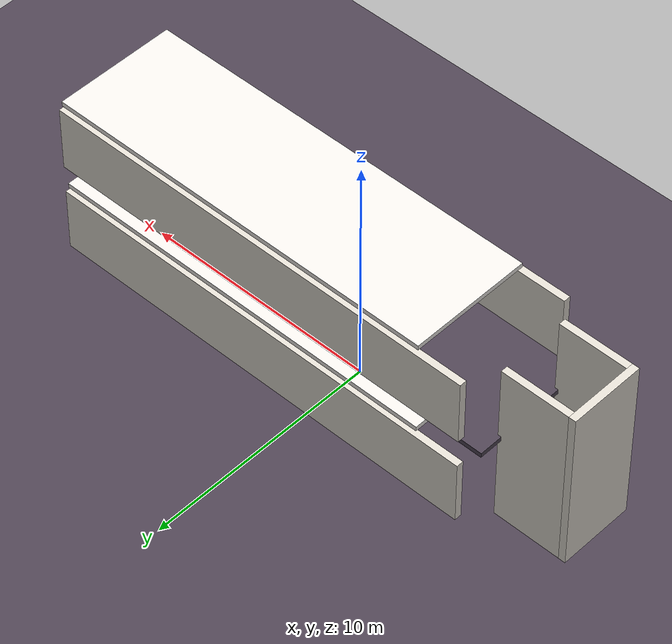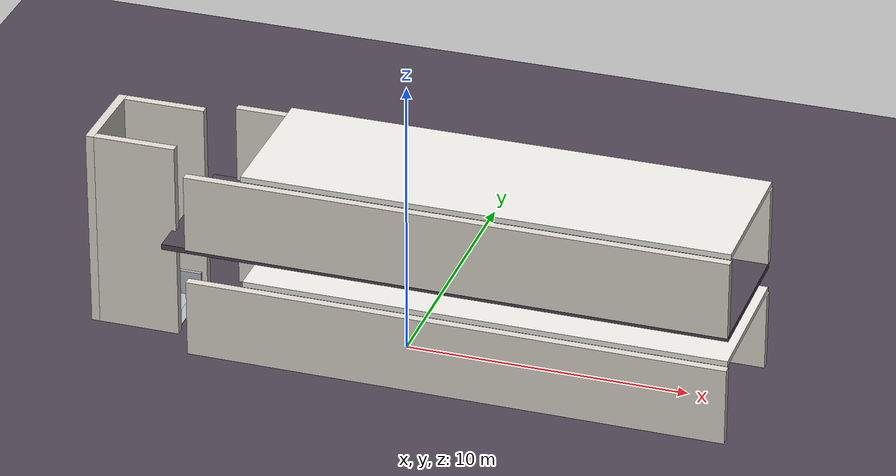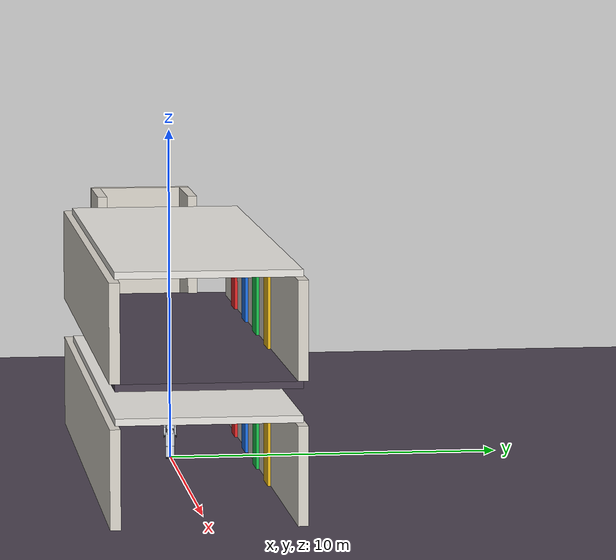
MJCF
<mujoco model="hotel">
  <include file="pyunto_h1.xml"/>

  <compiler angle="radian" autolimits="true"/>
  <option timestep="0.004" integrator="implicitfast"/>

  <visual>
    <headlight ambient="0.45 0.45 0.46" diffuse="0.40 0.40 0.40" specular="0.06 0.06 0.06"/>
    <map znear="0.02" zfar="60"/>
    <quality shadowsize="4096"/>
    <!-- Big enough for an offscreen render: the default 640x480 framebuffer refuses any
         larger image, which blocks documentation shots and any test that wants to look. -->
    <global offwidth="1600" offheight="1200"/>
  </visual>

  <asset>
    <texture name="carpet_tex" type="2d" builtin="checker" rgb1="0.32 0.28 0.34"
             rgb2="0.29 0.25 0.31" width="256" height="256"/>
    <material name="carpet" texture="carpet_tex" texrepeat="16 4" specular="0.04"/>
    <material name="wall" rgba="0.88 0.86 0.82 1" specular="0.06"/>
    <material name="ceiling" rgba="0.94 0.93 0.91 1" specular="0.05"/>
    <material name="trim" rgba="0.55 0.45 0.36 1" specular="0.15"/>
    <material name="lift_car" rgba="0.72 0.74 0.78 1" specular="0.55" shininess="0.6"/>

    <material name="door_101" rgba="0.90 0.16 0.16 1" emission="0.45" specular="0.2"/>
    <material name="door_102" rgba="0.12 0.45 0.92 1" emission="0.45" specular="0.2"/>
    <material name="door_103" rgba="0.10 0.78 0.30 1" emission="0.45" specular="0.2"/>
    <material name="door_104" rgba="0.95 0.75 0.10 1" emission="0.45" specular="0.2"/>
    <material name="lift_mat" rgba="0.85 0.20 0.75 1" emission="0.45" specular="0.3"/>
  </asset>

  <worldbody>
    <light name="corridor_light" pos="0 0 7.5" dir="0 0 -1" directional="true"
           diffuse="0.70 0.69 0.66" specular="0.10 0.10 0.10" castshadow="true"/>
    <light name="fill" pos="6 -6 5" dir="-0.4 0.6 -0.6" directional="true"
           diffuse="0.22 0.22 0.24"/>

    <!-- ================== ground floor ================== -->
    <geom name="floor_1" type="plane" size="30 30 0.05" material="carpet"
          friction="1.0 0.02 0.001" condim="3"/>
    <geom name="wall_1_north" type="box" pos="2.5 2.6 1.4" size="9.5 0.15 1.4" material="wall"/>
    <geom name="wall_1_south" type="box" pos="2.5 -2.6 1.4" size="9.5 0.15 1.4" material="wall"/>
    <geom name="ceiling_1" type="box" pos="3.5 0 3.0" size="8.5 2.6 0.1" material="ceiling"/>

    <geom name="door_101" type="box" pos="-4 2.42 1.05" size="0.5 0.06 1.05" material="door_101"/>
    <geom name="door_102" type="box" pos="-1 2.42 1.05" size="0.5 0.06 1.05" material="door_102"/>
    <geom name="door_103" type="box" pos="2 2.42 1.05" size="0.5 0.06 1.05" material="door_103"/>
    <geom name="door_104" type="box" pos="5 2.42 1.05" size="0.5 0.06 1.05" material="door_104"/>

    <!-- ================== first floor ================== -->
    <geom name="floor_2" type="box" pos="2.05 0 3.95" size="9.95 2.6 0.1" material="carpet"
          friction="1.0 0.02 0.001" condim="3"/>
    <geom name="wall_2_north" type="box" pos="2.5 2.6 5.45" size="9.5 0.15 1.4" material="wall"/>
    <geom name="wall_2_south" type="box" pos="2.5 -2.6 5.45" size="9.5 0.15 1.4" material="wall"/>
    <geom name="ceiling_2" type="box" pos="3.5 0 7.05" size="8.5 2.6 0.1" material="ceiling"/>

    <geom name="door_201" type="box" pos="-4 2.42 5.10" size="0.5 0.06 1.05" material="door_101"/>
    <geom name="door_202" type="box" pos="-1 2.42 5.10" size="0.5 0.06 1.05" material="door_102"/>
    <geom name="door_203" type="box" pos="2 2.42 5.10" size="0.5 0.06 1.05" material="door_103"/>
    <geom name="door_204" type="box" pos="5 2.42 5.10" size="0.5 0.06 1.05" material="door_104"/>

    <!-- ================== the lift ================== -->
    <!--
      The shaft walls, so the car is visibly a lift rather than a floating slab. Open on the
      east side, which is where the robot walks in from.
    -->
    <geom name="shaft_west" type="box" pos="-10.8 0 3.6" size="0.15 1.6 3.6" material="wall"/>
    <geom name="shaft_north" type="box" pos="-9.2 1.45 3.6" size="1.45 0.15 3.6" material="wall"/>
    <geom name="shaft_south" type="box" pos="-9.2 -1.45 3.6" size="1.45 0.15 3.6" material="wall"/>

    <body name="lift" pos="-9.2 0 -0.25">
      <joint name="lift_z" type="slide" axis="0 0 1" range="0 4.05" damping="60"/>
      <geom name="lift_sill" type="box" pos="1.15 0 0.255" size="0.18 1.15 0.01"
            material="lift_car" density="120" friction="1.2 0.02 0.001" condim="3"/>
      <geom name="lift_floor" type="box" size="1.30 1.20 0.25" material="lift_car"
            density="120" friction="1.2 0.02 0.001" condim="3"/>
      <!-- A marker panel on the car's back wall: the landmark the robot navigates to. -->
      <geom name="lift_panel" density="120" type="box" pos="-1.23 0 1.25" size="0.06 0.9 0.9" material="lift_mat"/>
      <geom name="lift_rail_n" density="120" type="box" pos="0 1.13 0.70" size="1.30 0.06 0.45" material="lift_car"/>
      <geom name="lift_rail_s" density="120" type="box" pos="0 -1.13 0.70" size="1.30 0.06 0.45" material="lift_car"/>
    </body>
  </worldbody>

  <actuator>
    <!--
      Position control with a stiff gain: a lift holds its floor against whatever stands on it.
      forcerange is generous because the car has to lift a 40 kg robot as well as itself.
    -->
    <position name="lift_z" joint="lift_z" kp="120000" ctrlrange="0 4.05"
              forcerange="-20000 20000"/>
  </actuator>

  <keyframe>
    <key name="corridor"
         qpos="0 0 0.8136  0 0 0 1
               0
               -0.25 -0.12 0 -0.35   0 0
               -0.25  0.12 0 -0.35   0 0
               0 0 -0.25 0.5 -0.25 0
               0 0 -0.25 0.5 -0.25 0
               0"/>
    <!-- "in_lift" starts the robot already standing in the car, for testing the ride alone. -->
    <key name="in_lift"
         qpos="-9.2 0 0.8436  0 0 0 1
               0
               -0.25 -0.12 0 -0.35   0 0
               -0.25  0.12 0 -0.35   0 0
               0 0 -0.25 0.5 -0.25 0
               0 0 -0.25 0.5 -0.25 0
               0"/>
  </keyframe>
</mujoco>

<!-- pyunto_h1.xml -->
<mujoco model="pyunto_h1">
  <compiler angle="radian" autolimits="true"/>

  <default>
    <!-- Servo defaults. kp is per-joint-group; heavier joints get more authority below. -->
    <default class="robot">
      <geom type="capsule" condim="3" friction="0.9 0.05 0.01" density="900"
            rgba="0.85 0.87 0.9 1" group="1"/>
      <joint type="hinge" damping="2" armature="0.02" limited="true"/>
      <position kp="120" dampratio="1" ctrllimited="true"/>

      <default class="leg">
        <joint damping="5" armature="0.05"/>
        <position kp="400" forcerange="-200 200"/>
      </default>
      <default class="arm">
        <joint damping="2" armature="0.02"/>
        <position kp="150" forcerange="-60 60"/>
      </default>
      <default class="finger">
        <joint damping="0.3" armature="0.005"/>
        <geom rgba="0.25 0.27 0.3 1" friction="2.0 0.1 0.01" condim="4"/>
        <position kp="30" forcerange="-25 25"/>
      </default>
      <!-- Feet: high friction, box-ish contact so the robot does not skate. -->
      <default class="foot">
        <geom type="box" friction="1.5 0.1 0.01" condim="6" rgba="0.2 0.22 0.25 1"/>
      </default>
      <default class="accent">
        <geom rgba="0.15 0.55 0.85 1"/>
      </default>
    </default>
  </default>

  <asset>
    <material name="body_mat" rgba="0.85 0.87 0.90 1" specular="0.3" shininess="0.4"/>
    <material name="dark_mat" rgba="0.20 0.22 0.25 1" specular="0.2"/>
    <material name="accent_mat" rgba="0.15 0.55 0.85 1" specular="0.5" shininess="0.6"/>
  </asset>

  <worldbody>
    <body name="pelvis" pos="0 0 0.789" childclass="robot">
      <freejoint name="root"/>
      <inertial pos="0 0 0" mass="6.0" diaginertia="0.06 0.05 0.04"/>
      <geom name="pelvis_g" type="box" size="0.085 0.10 0.06" material="body_mat"/>

      <!-- ================= TORSO ================= -->
      <body name="torso" pos="0 0 0.105">
        <joint name="waist_yaw" axis="0 0 1" range="-1.0 1.0"/>
        <inertial pos="0 0 0.16" mass="11.0" diaginertia="0.18 0.15 0.09"/>
        <geom name="torso_g" type="box" size="0.100 0.120 0.175" pos="0 0 0.165"
              material="body_mat"/>
        <geom name="chest_g" type="box" size="0.055 0.075 0.02" pos="0.055 0 0.22"
              material="accent_mat" class="accent"/>

        <!-- ================= HEAD + CAMERA ================= -->
        <!-- A short neck stub separates the head from the torso so they do not interpenetrate. -->
        <body name="head" pos="0 0 0.455">
          <inertial pos="0 0 0.03" mass="1.2" diaginertia="0.006 0.006 0.005"/>
          <joint name="neck_yaw" type="hinge" axis="0 0 1" pos="0 0 -0.055"
                 range="-1.75 1.75" damping="1.5" stiffness="0" armature="0.005"/>
          <geom name="neck_g" type="cylinder" size="0.032 0.030" pos="0 0 -0.055"
                material="dark_mat"/>
          <geom name="head_g" type="box" size="0.062 0.070 0.062" material="body_mat"/>
          <geom name="visor_g" type="box" size="0.018 0.062 0.026" pos="0.055 0 0.008"
                material="dark_mat"/>
          <camera name="head_cam" pos="0.075 0 0.01" xyaxes="0 -1 0 0 0 1" fovy="75"/>
          <site name="head_cam_site" pos="0.075 0 0.01" size="0.008" rgba="1 0 0 0.6"/>
          <camera name="look_left" pos="0.04 0.05 0.01" xyaxes="0.866 -0.5 0 0 0 1" fovy="90"/>
          <camera name="look_right" pos="0.04 -0.05 0.01" xyaxes="-0.866 -0.5 0 0 0 1" fovy="90"/>
        </body>

        <!-- ================= ARMS ================= -->
        <body name="shoulder_r" pos="0 -0.160 0.345">
          <joint name="sh_pitch_r" axis="0 1 0" range="-3.1 1.6" class="arm"/>
          <joint name="sh_roll_r" axis="1 0 0" range="-1.7 0.35" class="arm"/>
          <joint name="sh_yaw_r" axis="0 0 1" range="-1.6 1.6" class="arm"/>
          <inertial pos="0 0 -0.14" mass="1.6" diaginertia="0.012 0.012 0.004"/>
          <geom name="uarm_r" type="capsule" fromto="0 0 0 0 0 -0.285" size="0.038"
                material="body_mat"/>

          <body name="forearm_r" pos="0 0 -0.285">
            <joint name="elbow_r" axis="0 1 0" range="-2.4 0.0" class="arm"/>
            <inertial pos="0 0 -0.12" mass="1.0" diaginertia="0.006 0.006 0.002"/>
            <geom name="farm_r" type="capsule" fromto="0 0 0 0 0 -0.255" size="0.032"
                  material="body_mat"/>

            <!-- Palm + 2 fingers. Fingers are coupled by a tendon and driven by one actuator. -->
            <body name="palm_r" pos="0 0 -0.255">
              <inertial pos="0 0 -0.02" mass="0.25" diaginertia="0.0004 0.0004 0.0003"/>
              <geom name="palm_r_g" type="box" size="0.022 0.038 0.022" material="dark_mat"/>
              <site name="grip_r" pos="0 0 -0.062" size="0.012" rgba="0 1 0 0.5"/>
              <body name="finger_r1" pos="0 -0.032 -0.018">
                <joint name="grip_r1" axis="1 0 0" range="0 0.9" class="finger"/>
                <geom name="fing_r1" type="box" size="0.016 0.010 0.042" pos="0 0 -0.036"
                      class="finger"/>
              </body>
              <body name="finger_r2" pos="0 0.032 -0.018">
                <joint name="grip_r2" axis="-1 0 0" range="0 0.9" class="finger"/>
                <geom name="fing_r2" type="box" size="0.016 0.010 0.042" pos="0 0 -0.036"
                      class="finger"/>
              </body>
            </body>
          </body>
        </body>

        <body name="shoulder_l" pos="0 0.160 0.345">
          <joint name="sh_pitch_l" axis="0 1 0" range="-3.1 1.6" class="arm"/>
          <joint name="sh_roll_l" axis="1 0 0" range="-0.35 1.7" class="arm"/>
          <joint name="sh_yaw_l" axis="0 0 1" range="-1.6 1.6" class="arm"/>
          <inertial pos="0 0 -0.14" mass="1.6" diaginertia="0.012 0.012 0.004"/>
          <geom name="uarm_l" type="capsule" fromto="0 0 0 0 0 -0.285" size="0.038"
                material="body_mat"/>

          <body name="forearm_l" pos="0 0 -0.285">
            <joint name="elbow_l" axis="0 1 0" range="-2.4 0.0" class="arm"/>
            <inertial pos="0 0 -0.12" mass="1.0" diaginertia="0.006 0.006 0.002"/>
            <geom name="farm_l" type="capsule" fromto="0 0 0 0 0 -0.255" size="0.032"
                  material="body_mat"/>

            <body name="palm_l" pos="0 0 -0.255">
              <inertial pos="0 0 -0.02" mass="0.25" diaginertia="0.0004 0.0004 0.0003"/>
              <geom name="palm_l_g" type="box" size="0.022 0.038 0.022" material="dark_mat"/>
              <site name="grip_l" pos="0 0 -0.062" size="0.012" rgba="0 1 0 0.5"/>
              <body name="finger_l1" pos="0 -0.032 -0.018">
                <joint name="grip_l1" axis="1 0 0" range="0 0.9" class="finger"/>
                <geom name="fing_l1" type="box" size="0.016 0.010 0.042" pos="0 0 -0.036"
                      class="finger"/>
              </body>
              <body name="finger_l2" pos="0 0.032 -0.018">
                <joint name="grip_l2" axis="-1 0 0" range="0 0.9" class="finger"/>
                <geom name="fing_l2" type="box" size="0.016 0.010 0.042" pos="0 0 -0.036"
                      class="finger"/>
              </body>
            </body>
          </body>
        </body>
      </body>

      <!-- ================= LEGS ================= -->
      <!-- Hip order yaw -> roll -> pitch mirrors how humanoid IK is normally decomposed. -->
      <body name="hip_r" pos="0 -0.088 -0.062">
        <joint name="hip_yaw_r" axis="0 0 1" range="-0.7 0.7" class="leg"/>
        <joint name="hip_roll_r" axis="1 0 0" range="-0.5 0.5" class="leg"/>
        <joint name="hip_pitch_r" axis="0 1 0" range="-1.9 1.0" class="leg"/>
        <inertial pos="0 0 -0.18" mass="4.0" diaginertia="0.03 0.03 0.008"/>
        <geom name="thigh_r" type="capsule" fromto="0 0 0 0 0 -0.367" size="0.052"
              material="body_mat"/>

        <body name="shin_r" pos="0 0 -0.367">
          <joint name="knee_r" axis="0 1 0" range="0 2.2" class="leg"/>
          <inertial pos="0 0 -0.17" mass="2.8" diaginertia="0.02 0.02 0.004"/>
          <geom name="shin_r_g" type="capsule" fromto="0 0 0 0 0 -0.352" size="0.044"
                material="body_mat"/>

          <body name="foot_r" pos="0 0 -0.352">
            <joint name="ank_pitch_r" axis="0 1 0" range="-0.9 0.6" class="leg"/>
            <joint name="ank_roll_r" axis="1 0 0" range="-0.4 0.4" class="leg"/>
            <inertial pos="0.02 0 -0.03" mass="0.9" diaginertia="0.003 0.004 0.002"/>
            <geom name="foot_r_g" size="0.115 0.050 0.0225" pos="0.028 0 -0.0325" class="foot"/>
          </body>
        </body>
      </body>

      <body name="hip_l" pos="0 0.088 -0.062">
        <joint name="hip_yaw_l" axis="0 0 1" range="-0.7 0.7" class="leg"/>
        <joint name="hip_roll_l" axis="1 0 0" range="-0.5 0.5" class="leg"/>
        <joint name="hip_pitch_l" axis="0 1 0" range="-1.9 1.0" class="leg"/>
        <inertial pos="0 0 -0.18" mass="4.0" diaginertia="0.03 0.03 0.008"/>
        <geom name="thigh_l" type="capsule" fromto="0 0 0 0 0 -0.367" size="0.052"
              material="body_mat"/>

        <body name="shin_l" pos="0 0 -0.367">
          <joint name="knee_l" axis="0 1 0" range="0 2.2" class="leg"/>
          <inertial pos="0 0 -0.17" mass="2.8" diaginertia="0.02 0.02 0.004"/>
          <geom name="shin_l_g" type="capsule" fromto="0 0 0 0 0 -0.352" size="0.044"
                material="body_mat"/>

          <body name="foot_l" pos="0 0 -0.352">
            <joint name="ank_pitch_l" axis="0 1 0" range="-0.9 0.6" class="leg"/>
            <joint name="ank_roll_l" axis="1 0 0" range="-0.4 0.4" class="leg"/>
            <inertial pos="0.02 0 -0.03" mass="0.9" diaginertia="0.003 0.004 0.002"/>
            <geom name="foot_l_g" size="0.115 0.050 0.0225" pos="0.028 0 -0.0325" class="foot"/>
          </body>
        </body>
      </body>
    </body>
  </worldbody>

  <!-- Couple each hand's two fingers so one actuator closes both symmetrically. -->
  <tendon>
    <fixed name="grip_r_t">
      <joint joint="grip_r1" coef="1"/>
      <joint joint="grip_r2" coef="-1"/>
    </fixed>
    <fixed name="grip_l_t">
      <joint joint="grip_l1" coef="1"/>
      <joint joint="grip_l2" coef="-1"/>
    </fixed>
  </tendon>
  <equality>
    <tendon tendon1="grip_r_t"/>
    <tendon tendon1="grip_l_t"/>
  </equality>

  <!-- Neighbouring links always touch; excluding them avoids constant contact churn. -->
  <contact>
    <exclude body1="pelvis" body2="torso"/>
    <exclude body1="pelvis" body2="hip_r"/>
    <exclude body1="pelvis" body2="hip_l"/>
    <exclude body1="torso" body2="shoulder_r"/>
    <exclude body1="torso" body2="shoulder_l"/>
    <exclude body1="torso" body2="head"/>
    <exclude body1="palm_r" body2="finger_r1"/>
    <exclude body1="palm_r" body2="finger_r2"/>
    <exclude body1="palm_l" body2="finger_l1"/>
    <exclude body1="palm_l" body2="finger_l2"/>
  </contact>

  <actuator>
    <!-- neck (1) -->
    <!--
      Strong enough to hold the head against the body's motion while walking, which is the
      whole point: a head that drifts with the torso is no better than a fixed one.
    -->
    <position name="neck_yaw" joint="neck_yaw" ctrlrange="-1.75 1.75" kp="25" kv="2.5"/>

    <!-- legs (12) -->
    <position name="hip_yaw_r" joint="hip_yaw_r" ctrlrange="-0.7 0.7" class="leg"/>
    <position name="hip_roll_r" joint="hip_roll_r" ctrlrange="-0.5 0.5" class="leg"/>
    <position name="hip_pitch_r" joint="hip_pitch_r" ctrlrange="-1.9 1.0" class="leg"/>
    <position name="knee_r" joint="knee_r" ctrlrange="0 2.2" class="leg"/>
    <position name="ank_pitch_r" joint="ank_pitch_r" ctrlrange="-0.9 0.6" class="leg"/>
    <position name="ank_roll_r" joint="ank_roll_r" ctrlrange="-0.4 0.4" class="leg"/>
    <position name="hip_yaw_l" joint="hip_yaw_l" ctrlrange="-0.7 0.7" class="leg"/>
    <position name="hip_roll_l" joint="hip_roll_l" ctrlrange="-0.5 0.5" class="leg"/>
    <position name="hip_pitch_l" joint="hip_pitch_l" ctrlrange="-1.9 1.0" class="leg"/>
    <position name="knee_l" joint="knee_l" ctrlrange="0 2.2" class="leg"/>
    <position name="ank_pitch_l" joint="ank_pitch_l" ctrlrange="-0.9 0.6" class="leg"/>
    <position name="ank_roll_l" joint="ank_roll_l" ctrlrange="-0.4 0.4" class="leg"/>
    <!-- waist (1) -->
    <position name="waist_yaw" joint="waist_yaw" ctrlrange="-1.0 1.0"/>
    <!-- arms (8) -->
    <position name="sh_pitch_r" joint="sh_pitch_r" ctrlrange="-3.1 1.6" class="arm"/>
    <position name="sh_roll_r" joint="sh_roll_r" ctrlrange="-1.7 0.35" class="arm"/>
    <position name="sh_yaw_r" joint="sh_yaw_r" ctrlrange="-1.6 1.6" class="arm"/>
    <position name="elbow_r" joint="elbow_r" ctrlrange="-2.4 0.0" class="arm"/>
    <position name="sh_pitch_l" joint="sh_pitch_l" ctrlrange="-3.1 1.6" class="arm"/>
    <position name="sh_roll_l" joint="sh_roll_l" ctrlrange="-0.35 1.7" class="arm"/>
    <position name="sh_yaw_l" joint="sh_yaw_l" ctrlrange="-1.6 1.6" class="arm"/>
    <position name="elbow_l" joint="elbow_l" ctrlrange="-2.4 0.0" class="arm"/>
    <!-- grippers (2): one per hand, fingers follow via the tendon equality -->
    <position name="grip_r" joint="grip_r1" ctrlrange="0 0.9" class="finger"/>
    <position name="grip_l" joint="grip_l1" ctrlrange="0 0.9" class="finger"/>
  </actuator>

  <keyframe>
    <key name="stand"
         qpos="0 0 0.8136  1 0 0 0
               0
               -0.25 -0.12 0 -0.35   0 0
               -0.25  0.12 0 -0.35   0 0
               0 0 -0.25 0.5 -0.25 0
               0 0 -0.25 0.5 -0.25 0"/>
  </keyframe>
</mujoco>
